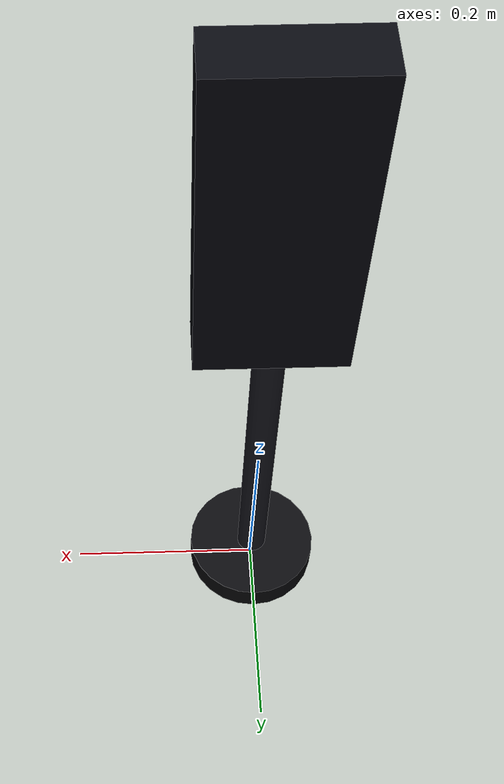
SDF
<?xml version='1.0' encoding='utf-8'?>
<sdf version="1.6">
  <model name="traffic_light_toy_green">
    <static>true</static>
    <link name="traffic_light_link">
      <visual name="base_visual">
        <pose>0 0 0.015 0 0 0</pose>
        <geometry>
          <cylinder>
            <radius>0.070</radius>
            <length>0.030</length>
          </cylinder>
        </geometry>
        <material>
          <ambient>0.03 0.03 0.04 1</ambient>
          <diffuse>0.04 0.04 0.05 1</diffuse>
        </material>
      </visual>
      <visual name="pole_visual">
        <pose>0 0 0.250 0 0 0</pose>
        <geometry>
          <cylinder>
            <radius>0.016</radius>
            <length>0.470</length>
          </cylinder>
        </geometry>
        <material>
          <ambient>0.08 0.08 0.10 1</ambient>
          <diffuse>0.10 0.10 0.13 1</diffuse>
        </material>
      </visual>
      <visual name="housing_visual">
        <pose>0 -0.006 0.565 0 0 0</pose>
        <geometry>
          <box>
            <size>0.145 0.055 0.340</size>
          </box>
        </geometry>
        <material>
          <ambient>0.02 0.025 0.04 1</ambient>
          <diffuse>0.03 0.035 0.06 1</diffuse>
        </material>
      </visual>
      <visual name="red_lens_visual">
        <pose>0 -0.038 0.660 0 0 0</pose>
        <geometry>
          <sphere>
            <radius>0.043</radius>
          </sphere>
        </geometry>
        <material>
          <ambient>0.035 0.002 0.002 1</ambient>
          <diffuse>0.060 0.004 0.004 1</diffuse>
          <emissive>0.00 0.00 0.00 1</emissive>
        </material>
      </visual>
      <visual name="yellow_lens_visual">
        <pose>0 -0.038 0.565 0 0 0</pose>
        <geometry>
          <sphere>
            <radius>0.043</radius>
          </sphere>
        </geometry>
        <material>
          <ambient>0.035 0.025 0.002 1</ambient>
          <diffuse>0.060 0.045 0.004 1</diffuse>
          <emissive>0.00 0.00 0.00 1</emissive>
        </material>
      </visual>
      <visual name="green_lens_visual">
        <pose>0 -0.038 0.470 0 0 0</pose>
        <geometry>
          <sphere>
            <radius>0.043</radius>
          </sphere>
        </geometry>
        <material>
          <ambient>0.0 1.0 0.05 1</ambient>
          <diffuse>0.0 1.0 0.05 1</diffuse>
          <emissive>0.0 8.0 0.30 1</emissive>
        </material>
      </visual>
    </link>
  </model>
</sdf>
